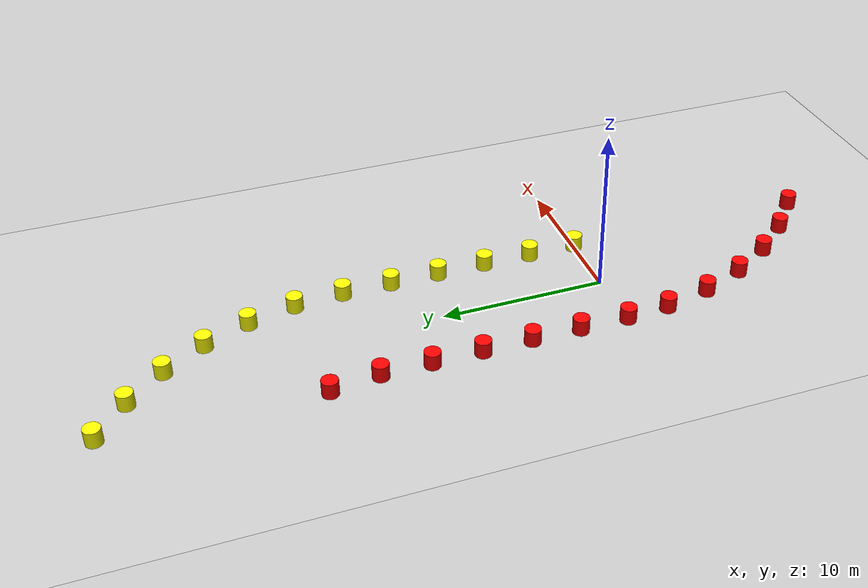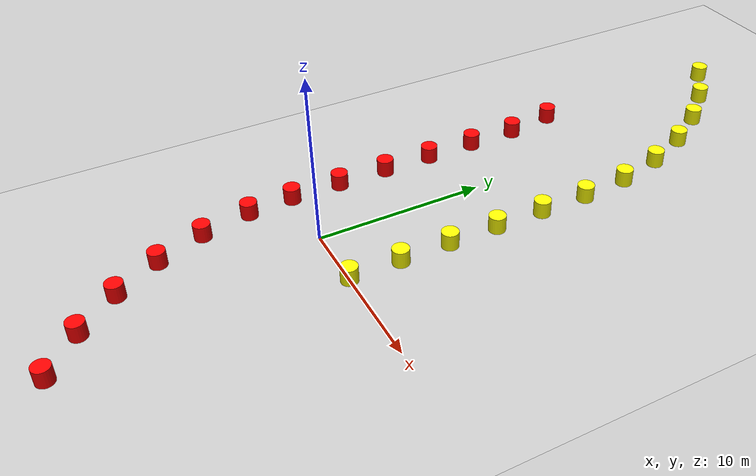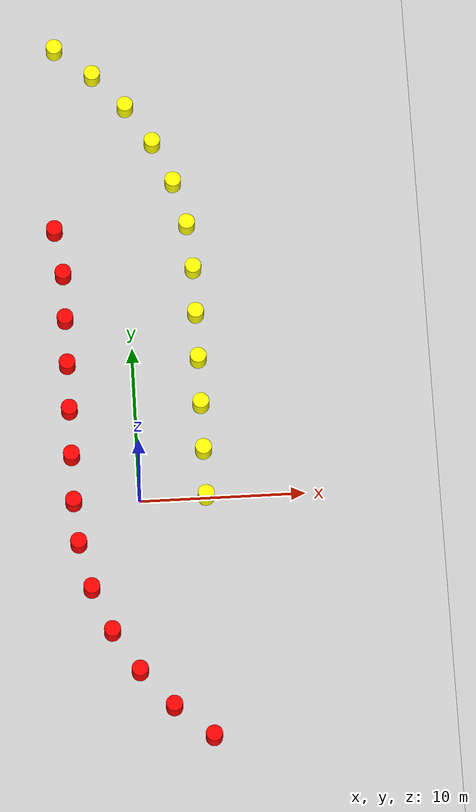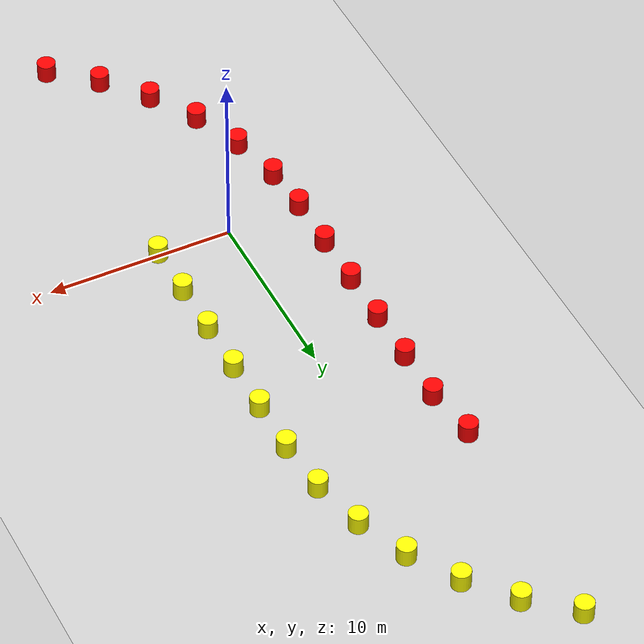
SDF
<sdf version="1.9">
 <world name="empty">
  <model name="ground_plane">
   <static>true</static>
   <link name="link">
    <collision name="collision">
     <geometry><plane><normal>0 0 1</normal><size>1000 1000</size></plane></geometry>
    </collision>
    <visual name="visual">
     <geometry><plane><normal>0 0 1</normal><size>1000 1000</size></plane></geometry>
     <material>
      <ambient>0.8 0.8 0.8 1</ambient>
      <diffuse>0.8 0.8 0.8 1</diffuse>
      <specular>0.8 0.8 0.8 1</specular>
     </material>
    </visual>
    <inertial>
     <mass>1</mass>
     <inertia><ixx>1</ixx><ixy>0</ixy><ixz>0</ixz><iyy>1</iyy><iyz>0</iyz><izz>1</izz></inertia>
    </inertial>
   </link>
  </model>
  <model name="red_cone_0">
   <pose>-4.0 0.0 0.5 0 -0 0</pose>
   <link name="cylinder_link">
    <inertial>
     <inertia>
      <ixx>0.14580000000000001</ixx>
      <ixy>0</ixy>
      <ixz>0</ixz>
      <iyy>0.14580000000000001</iyy>
      <iyz>0</iyz>
      <izz>0.125</izz>
     </inertia>
     <mass>1</mass>
    </inertial>
    <collision name="cylinder_collision">
     <geometry><cylinder><radius>0.5</radius><length>1</length></cylinder></geometry>
    </collision>
    <visual name="cylinder_visual">
     <geometry><cylinder><radius>0.5</radius><length>1</length></cylinder></geometry>
     <material><ambient>1 0 0 1</ambient><diffuse>1 0 0 1</diffuse><specular>1 1 1 1</specular></material>
    </visual>
   </link>
   <static>false</static>
  </model>
  <model name="red_cone_1">
   <pose>-4.0 3.0 0.5 0 -0 0</pose>
   <link name="cylinder_link">
    <inertial>
     <inertia>
      <ixx>0.14580000000000001</ixx>
      <ixy>0</ixy>
      <ixz>0</ixz>
      <iyy>0.14580000000000001</iyy>
      <iyz>0</iyz>
      <izz>0.125</izz>
     </inertia>
     <mass>1</mass>
    </inertial>
    <collision name="cylinder_collision">
     <geometry><cylinder><radius>0.5</radius><length>1</length></cylinder></geometry>
    </collision>
    <visual name="cylinder_visual">
     <geometry><cylinder><radius>0.5</radius><length>1</length></cylinder></geometry>
     <material><ambient>1 0 0 1</ambient><diffuse>1 0 0 1</diffuse><specular>1 1 1 1</specular></material>
    </visual>
   </link>
   <static>false</static>
  </model>
  <model name="red_cone_2">
   <pose>-4.0 6.0 0.5 0 -0 0</pose>
   <link name="cylinder_link">
    <inertial>
     <inertia>
      <ixx>0.14580000000000001</ixx>
      <ixy>0</ixy>
      <ixz>0</ixz>
      <iyy>0.14580000000000001</iyy>
      <iyz>0</iyz>
      <izz>0.125</izz>
     </inertia>
     <mass>1</mass>
    </inertial>
    <collision name="cylinder_collision">
     <geometry><cylinder><radius>0.5</radius><length>1</length></cylinder></geometry>
    </collision>
    <visual name="cylinder_visual">
     <geometry><cylinder><radius>0.5</radius><length>1</length></cylinder></geometry>
     <material><ambient>1 0 0 1</ambient><diffuse>1 0 0 1</diffuse><specular>1 1 1 1</specular></material>
    </visual>
   </link>
   <static>false</static>
  </model>
  <model name="red_cone_3">
   <pose>-4.0 9.0 0.5 0 -0 0</pose>
   <link name="cylinder_link">
    <inertial>
     <inertia>
      <ixx>0.14580000000000001</ixx>
      <ixy>0</ixy>
      <ixz>0</ixz>
      <iyy>0.14580000000000001</iyy>
      <iyz>0</iyz>
      <izz>0.125</izz>
     </inertia>
     <mass>1</mass>
    </inertial>
    <collision name="cylinder_collision">
     <geometry><cylinder><radius>0.5</radius><length>1</length></cylinder></geometry>
    </collision>
    <visual name="cylinder_visual">
     <geometry><cylinder><radius>0.5</radius><length>1</length></cylinder></geometry>
     <material><ambient>1 0 0 1</ambient><diffuse>1 0 0 1</diffuse><specular>1 1 1 1</specular></material>
    </visual>
   </link>
   <static>false</static>
  </model>
  <model name="red_cone_4">
   <pose>-4.0 12.0 0.5 0 -0 0</pose>
   <link name="cylinder_link">
    <inertial>
     <inertia>
      <ixx>0.14580000000000001</ixx>
      <ixy>0</ixy>
      <ixz>0</ixz>
      <iyy>0.14580000000000001</iyy>
      <iyz>0</iyz>
      <izz>0.125</izz>
     </inertia>
     <mass>1</mass>
    </inertial>
    <collision name="cylinder_collision">
     <geometry><cylinder><radius>0.5</radius><length>1</length></cylinder></geometry>
    </collision>
    <visual name="cylinder_visual">
     <geometry><cylinder><radius>0.5</radius><length>1</length></cylinder></geometry>
     <material><ambient>1 0 0 1</ambient><diffuse>1 0 0 1</diffuse><specular>1 1 1 1</specular></material>
    </visual>
   </link>
   <static>false</static>
  </model>
  <model name="red_cone_5">
   <pose>-4.0 15.0 0.5 0 -0 0</pose>
   <link name="cylinder_link">
    <inertial>
     <inertia>
      <ixx>0.14580000000000001</ixx>
      <ixy>0</ixy>
      <ixz>0</ixz>
      <iyy>0.14580000000000001</iyy>
      <iyz>0</iyz>
      <izz>0.125</izz>
     </inertia>
     <mass>1</mass>
    </inertial>
    <collision name="cylinder_collision">
     <geometry><cylinder><radius>0.5</radius><length>1</length></cylinder></geometry>
    </collision>
    <visual name="cylinder_visual">
     <geometry><cylinder><radius>0.5</radius><length>1</length></cylinder></geometry>
     <material><ambient>1 0 0 1</ambient><diffuse>1 0 0 1</diffuse><specular>1 1 1 1</specular></material>
    </visual>
   </link>
   <static>false</static>
  </model>
  <model name="red_cone_6">
   <pose>-4.0 15.0 0.5 0 -0 0</pose>
   <link name="cylinder_link">
    <inertial>
     <inertia>
      <ixx>0.14580000000000001</ixx>
      <ixy>0</ixy>
      <ixz>0</ixz>
      <iyy>0.14580000000000001</iyy>
      <iyz>0</iyz>
      <izz>0.125</izz>
     </inertia>
     <mass>1</mass>
    </inertial>
    <collision name="cylinder_collision">
     <geometry><cylinder><radius>0.5</radius><length>1</length></cylinder></geometry>
    </collision>
    <visual name="cylinder_visual">
     <geometry><cylinder><radius>0.5</radius><length>1</length></cylinder></geometry>
     <material><ambient>1 0 0 1</ambient><diffuse>1 0 0 1</diffuse><specular>1 1 1 1</specular></material>
    </visual>
   </link>
   <static>false</static>
  </model>
  <model name="red_cone_7">
   <pose>-4.406561500122885 17.962947982891585 0.5 0 -0 0</pose>
   <link name="cylinder_link">
    <inertial>
     <inertia>
      <ixx>0.14580000000000001</ixx>
      <ixy>0</ixy>
      <ixz>0</ixz>
      <iyy>0.14580000000000001</iyy>
      <iyz>0</iyz>
      <izz>0.125</izz>
     </inertia>
     <mass>1</mass>
    </inertial>
    <collision name="cylinder_collision">
     <geometry><cylinder><radius>0.5</radius><length>1</length></cylinder></geometry>
    </collision>
    <visual name="cylinder_visual">
     <geometry><cylinder><radius>0.5</radius><length>1</length></cylinder></geometry>
     <material><ambient>1 0 0 1</ambient><diffuse>1 0 0 1</diffuse><specular>1 1 1 1</specular></material>
    </visual>
   </link>
   <static>false</static>
  </model>
  <model name="red_cone_105">
   <pose>3.6574019466445726 -15.242882581717192 0.5 0 -0 0</pose>
   <link name="cylinder_link">
    <inertial>
     <inertia>
      <ixx>0.14580000000000001</ixx>
      <ixy>0</ixy>
      <ixz>0</ixz>
      <iyy>0.14580000000000001</iyy>
      <iyz>0</iyz>
      <izz>0.125</izz>
     </inertia>
     <mass>1</mass>
    </inertial>
    <collision name="cylinder_collision">
     <geometry><cylinder><radius>0.5</radius><length>1</length></cylinder></geometry>
    </collision>
    <visual name="cylinder_visual">
     <geometry><cylinder><radius>0.5</radius><length>1</length></cylinder></geometry>
     <material><ambient>1 0 0 1</ambient><diffuse>1 0 0 1</diffuse><specular>1 1 1 1</specular></material>
    </visual>
   </link>
   <static>false</static>
  </model>
  <model name="red_cone_106">
   <pose>1.4017152118752882 -13.269764535252905 0.5 0 -0 0</pose>
   <link name="cylinder_link">
    <inertial>
     <inertia>
      <ixx>0.14580000000000001</ixx>
      <ixy>0</ixy>
      <ixz>0</ixz>
      <iyy>0.14580000000000001</iyy>
      <iyz>0</iyz>
      <izz>0.125</izz>
     </inertia>
     <mass>1</mass>
    </inertial>
    <collision name="cylinder_collision">
     <geometry><cylinder><radius>0.5</radius><length>1</length></cylinder></geometry>
    </collision>
    <visual name="cylinder_visual">
     <geometry><cylinder><radius>0.5</radius><length>1</length></cylinder></geometry>
     <material><ambient>1 0 0 1</ambient><diffuse>1 0 0 1</diffuse><specular>1 1 1 1</specular></material>
    </visual>
   </link>
   <static>false</static>
  </model>
  <model name="red_cone_107">
   <pose>-0.5156598532566168 -10.966508073130685 0.5 0 -0 0</pose>
   <link name="cylinder_link">
    <inertial>
     <inertia>
      <ixx>0.14580000000000001</ixx>
      <ixy>0</ixy>
      <ixz>0</ixz>
      <iyy>0.14580000000000001</iyy>
      <iyz>0</iyz>
      <izz>0.125</izz>
     </inertia>
     <mass>1</mass>
    </inertial>
    <collision name="cylinder_collision">
     <geometry><cylinder><radius>0.5</radius><length>1</length></cylinder></geometry>
    </collision>
    <visual name="cylinder_visual">
     <geometry><cylinder><radius>0.5</radius><length>1</length></cylinder></geometry>
     <material><ambient>1 0 0 1</ambient><diffuse>1 0 0 1</diffuse><specular>1 1 1 1</specular></material>
    </visual>
   </link>
   <static>false</static>
  </model>
  <model name="red_cone_108">
   <pose>-2.0470208826282565 -8.390415903114445 0.5 0 -0 0</pose>
   <link name="cylinder_link">
    <inertial>
     <inertia>
      <ixx>0.14580000000000001</ixx>
      <ixy>0</ixy>
      <ixz>0</ixz>
      <iyy>0.14580000000000001</iyy>
      <iyz>0</iyz>
      <izz>0.125</izz>
     </inertia>
     <mass>1</mass>
    </inertial>
    <collision name="cylinder_collision">
     <geometry><cylinder><radius>0.5</radius><length>1</length></cylinder></geometry>
    </collision>
    <visual name="cylinder_visual">
     <geometry><cylinder><radius>0.5</radius><length>1</length></cylinder></geometry>
     <material><ambient>1 0 0 1</ambient><diffuse>1 0 0 1</diffuse><specular>1 1 1 1</specular></material>
    </visual>
   </link>
   <static>false</static>
  </model>
  <model name="red_cone_109">
   <pose>-3.154269151677216 -5.6055786113889035 0.5 0 -0 0</pose>
   <link name="cylinder_link">
    <inertial>
     <inertia>
      <ixx>0.14580000000000001</ixx>
      <ixy>0</ixy>
      <ixz>0</ixz>
      <iyy>0.14580000000000001</iyy>
      <iyz>0</iyz>
      <izz>0.125</izz>
     </inertia>
     <mass>1</mass>
    </inertial>
    <collision name="cylinder_collision">
     <geometry><cylinder><radius>0.5</radius><length>1</length></cylinder></geometry>
    </collision>
    <visual name="cylinder_visual">
     <geometry><cylinder><radius>0.5</radius><length>1</length></cylinder></geometry>
     <material><ambient>1 0 0 1</ambient><diffuse>1 0 0 1</diffuse><specular>1 1 1 1</specular></material>
    </visual>
   </link>
   <static>false</static>
  </model>
  <model name="red_cone_110">
   <pose>-3.809857435408457 -2.681280153137476 0.5 0 -0 0</pose>
   <link name="cylinder_link">
    <inertial>
     <inertia>
      <ixx>0.14580000000000001</ixx>
      <ixy>0</ixy>
      <ixz>0</ixz>
      <iyy>0.14580000000000001</iyy>
      <iyz>0</iyz>
      <izz>0.125</izz>
     </inertia>
     <mass>1</mass>
    </inertial>
    <collision name="cylinder_collision">
     <geometry><cylinder><radius>0.5</radius><length>1</length></cylinder></geometry>
    </collision>
    <visual name="cylinder_visual">
     <geometry><cylinder><radius>0.5</radius><length>1</length></cylinder></geometry>
     <material><ambient>1 0 0 1</ambient><diffuse>1 0 0 1</diffuse><specular>1 1 1 1</specular></material>
    </visual>
   </link>
   <static>false</static>
  </model>
  <model name="yellow_cone_0">
   <pose>4.0 0.0 0.5 0 -0 0</pose>
   <link name="cylinder_link">
    <inertial>
     <inertia>
      <ixx>0.14580000000000001</ixx>
      <ixy>0</ixy>
      <ixz>0</ixz>
      <iyy>0.14580000000000001</iyy>
      <iyz>0</iyz>
      <izz>0.125</izz>
     </inertia>
     <mass>1</mass>
    </inertial>
    <collision name="cylinder_collision">
     <geometry><cylinder><radius>0.5</radius><length>1</length></cylinder></geometry>
    </collision>
    <visual name="cylinder_visual">
     <geometry><cylinder><radius>0.5</radius><length>1</length></cylinder></geometry>
     <material><ambient>1 1 0 1</ambient><diffuse>1 1 0 1</diffuse><specular>1 1 1 1</specular></material>
    </visual>
   </link>
   <static>false</static>
  </model>
  <model name="yellow_cone_1">
   <pose>4.0 3.0 0.5 0 -0 0</pose>
   <link name="cylinder_link">
    <inertial>
     <inertia>
      <ixx>0.14580000000000001</ixx>
      <ixy>0</ixy>
      <ixz>0</ixz>
      <iyy>0.14580000000000001</iyy>
      <iyz>0</iyz>
      <izz>0.125</izz>
     </inertia>
     <mass>1</mass>
    </inertial>
    <collision name="cylinder_collision">
     <geometry><cylinder><radius>0.5</radius><length>1</length></cylinder></geometry>
    </collision>
    <visual name="cylinder_visual">
     <geometry><cylinder><radius>0.5</radius><length>1</length></cylinder></geometry>
     <material><ambient>1 1 0 1</ambient><diffuse>1 1 0 1</diffuse><specular>1 1 1 1</specular></material>
    </visual>
   </link>
   <static>false</static>
  </model>
  <model name="yellow_cone_2">
   <pose>4.0 6.0 0.5 0 -0 0</pose>
   <link name="cylinder_link">
    <inertial>
     <inertia>
      <ixx>0.14580000000000001</ixx>
      <ixy>0</ixy>
      <ixz>0</ixz>
      <iyy>0.14580000000000001</iyy>
      <iyz>0</iyz>
      <izz>0.125</izz>
     </inertia>
     <mass>1</mass>
    </inertial>
    <collision name="cylinder_collision">
     <geometry><cylinder><radius>0.5</radius><length>1</length></cylinder></geometry>
    </collision>
    <visual name="cylinder_visual">
     <geometry><cylinder><radius>0.5</radius><length>1</length></cylinder></geometry>
     <material><ambient>1 1 0 1</ambient><diffuse>1 1 0 1</diffuse><specular>1 1 1 1</specular></material>
    </visual>
   </link>
   <static>false</static>
  </model>
  <model name="yellow_cone_3">
   <pose>4.0 9.0 0.5 0 -0 0</pose>
   <link name="cylinder_link">
    <inertial>
     <inertia>
      <ixx>0.14580000000000001</ixx>
      <ixy>0</ixy>
      <ixz>0</ixz>
      <iyy>0.14580000000000001</iyy>
      <iyz>0</iyz>
      <izz>0.125</izz>
     </inertia>
     <mass>1</mass>
    </inertial>
    <collision name="cylinder_collision">
     <geometry><cylinder><radius>0.5</radius><length>1</length></cylinder></geometry>
    </collision>
    <visual name="cylinder_visual">
     <geometry><cylinder><radius>0.5</radius><length>1</length></cylinder></geometry>
     <material><ambient>1 1 0 1</ambient><diffuse>1 1 0 1</diffuse><specular>1 1 1 1</specular></material>
    </visual>
   </link>
   <static>false</static>
  </model>
  <model name="yellow_cone_4">
   <pose>4.0 12.0 0.5 0 -0 0</pose>
   <link name="cylinder_link">
    <inertial>
     <inertia>
      <ixx>0.14580000000000001</ixx>
      <ixy>0</ixy>
      <ixz>0</ixz>
      <iyy>0.14580000000000001</iyy>
      <iyz>0</iyz>
      <izz>0.125</izz>
     </inertia>
     <mass>1</mass>
    </inertial>
    <collision name="cylinder_collision">
     <geometry><cylinder><radius>0.5</radius><length>1</length></cylinder></geometry>
    </collision>
    <visual name="cylinder_visual">
     <geometry><cylinder><radius>0.5</radius><length>1</length></cylinder></geometry>
     <material><ambient>1 1 0 1</ambient><diffuse>1 1 0 1</diffuse><specular>1 1 1 1</specular></material>
    </visual>
   </link>
   <static>false</static>
  </model>
  <model name="yellow_cone_5">
   <pose>4.0 15.0 0.5 0 -0 0</pose>
   <link name="cylinder_link">
    <inertial>
     <inertia>
      <ixx>0.14580000000000001</ixx>
      <ixy>0</ixy>
      <ixz>0</ixz>
      <iyy>0.14580000000000001</iyy>
      <iyz>0</iyz>
      <izz>0.125</izz>
     </inertia>
     <mass>1</mass>
    </inertial>
    <collision name="cylinder_collision">
     <geometry><cylinder><radius>0.5</radius><length>1</length></cylinder></geometry>
    </collision>
    <visual name="cylinder_visual">
     <geometry><cylinder><radius>0.5</radius><length>1</length></cylinder></geometry>
     <material><ambient>1 1 0 1</ambient><diffuse>1 1 0 1</diffuse><specular>1 1 1 1</specular></material>
    </visual>
   </link>
   <static>false</static>
  </model>
  <model name="yellow_cone_7">
   <pose>3.76364954024481 17.987550155373256 0.5 0 -0 0</pose>
   <link name="cylinder_link">
    <inertial>
     <inertia>
      <ixx>0.14580000000000001</ixx>
      <ixy>0</ixy>
      <ixz>0</ixz>
      <iyy>0.14580000000000001</iyy>
      <iyz>0</iyz>
      <izz>0.125</izz>
     </inertia>
     <mass>1</mass>
    </inertial>
    <collision name="cylinder_collision">
     <geometry><cylinder><radius>0.5</radius><length>1</length></cylinder></geometry>
    </collision>
    <visual name="cylinder_visual">
     <geometry><cylinder><radius>0.5</radius><length>1</length></cylinder></geometry>
     <material><ambient>1 1 0 1</ambient><diffuse>1 1 0 1</diffuse><specular>1 1 1 1</specular></material>
    </visual>
   </link>
   <static>false</static>
  </model>
  <model name="yellow_cone_8">
   <pose>3.060478323066235 20.900773063087126 0.5 0 -0 0</pose>
   <link name="cylinder_link">
    <inertial>
     <inertia>
      <ixx>0.14580000000000001</ixx>
      <ixy>0</ixy>
      <ixz>0</ixz>
      <iyy>0.14580000000000001</iyy>
      <iyz>0</iyz>
      <izz>0.125</izz>
     </inertia>
     <mass>1</mass>
    </inertial>
    <collision name="cylinder_collision">
     <geometry><cylinder><radius>0.5</radius><length>1</length></cylinder></geometry>
    </collision>
    <visual name="cylinder_visual">
     <geometry><cylinder><radius>0.5</radius><length>1</length></cylinder></geometry>
     <material><ambient>1 1 0 1</ambient><diffuse>1 1 0 1</diffuse><specular>1 1 1 1</specular></material>
    </visual>
   </link>
   <static>false</static>
  </model>
  <model name="yellow_cone_9">
   <pose>1.907980542197624 23.66719066276187 0.5 0 -0 0</pose>
   <link name="cylinder_link">
    <inertial>
     <inertia>
      <ixx>0.14580000000000001</ixx>
      <ixy>0</ixy>
      <ixz>0</ixz>
      <iyy>0.14580000000000001</iyy>
      <iyz>0</iyz>
      <izz>0.125</izz>
     </inertia>
     <mass>1</mass>
    </inertial>
    <collision name="cylinder_collision">
     <geometry><cylinder><radius>0.5</radius><length>1</length></cylinder></geometry>
    </collision>
    <visual name="cylinder_visual">
     <geometry><cylinder><radius>0.5</radius><length>1</length></cylinder></geometry>
     <material><ambient>1 1 0 1</ambient><diffuse>1 1 0 1</diffuse><specular>1 1 1 1</specular></material>
    </visual>
   </link>
   <static>false</static>
  </model>
  <model name="yellow_cone_10">
   <pose>0.33482918504688364 26.217977262654543 0.5 0 -0 0</pose>
   <link name="cylinder_link">
    <inertial>
     <inertia>
      <ixx>0.14580000000000001</ixx>
      <ixy>0</ixy>
      <ixz>0</ixz>
      <iyy>0.14580000000000001</iyy>
      <iyz>0</iyz>
      <izz>0.125</izz>
     </inertia>
     <mass>1</mass>
    </inertial>
    <collision name="cylinder_collision">
     <geometry><cylinder><radius>0.5</radius><length>1</length></cylinder></geometry>
    </collision>
    <visual name="cylinder_visual">
     <geometry><cylinder><radius>0.5</radius><length>1</length></cylinder></geometry>
     <material><ambient>1 1 0 1</ambient><diffuse>1 1 0 1</diffuse><specular>1 1 1 1</specular></material>
    </visual>
   </link>
   <static>false</static>
  </model>
  <model name="yellow_cone_11">
   <pose>-1.6198373224357656 28.489671853752306 0.5 0 -0 0</pose>
   <link name="cylinder_link">
    <inertial>
     <inertia>
      <ixx>0.14580000000000001</ixx>
      <ixy>0</ixy>
      <ixz>0</ixz>
      <iyy>0.14580000000000001</iyy>
      <iyz>0</iyz>
      <izz>0.125</izz>
     </inertia>
     <mass>1</mass>
    </inertial>
    <collision name="cylinder_collision">
     <geometry><cylinder><radius>0.5</radius><length>1</length></cylinder></geometry>
    </collision>
    <visual name="cylinder_visual">
     <geometry><cylinder><radius>0.5</radius><length>1</length></cylinder></geometry>
     <material><ambient>1 1 0 1</ambient><diffuse>1 1 0 1</diffuse><specular>1 1 1 1</specular></material>
    </visual>
   </link>
   <static>false</static>
  </model>
  <model name="yellow_cone_12">
   <pose>-3.90738884049121 30.425756955946802 0.5 0 -0 0</pose>
   <link name="cylinder_link">
    <inertial>
     <inertia>
      <ixx>0.14580000000000001</ixx>
      <ixy>0</ixy>
      <ixz>0</ixz>
      <iyy>0.14580000000000001</iyy>
      <iyz>0</iyz>
      <izz>0.125</izz>
     </inertia>
     <mass>1</mass>
    </inertial>
    <collision name="cylinder_collision">
     <geometry><cylinder><radius>0.5</radius><length>1</length></cylinder></geometry>
    </collision>
    <visual name="cylinder_visual">
     <geometry><cylinder><radius>0.5</radius><length>1</length></cylinder></geometry>
     <material><ambient>1 1 0 1</ambient><diffuse>1 1 0 1</diffuse><specular>1 1 1 1</specular></material>
    </visual>
   </link>
   <static>false</static>
  </model>
 </world>
</sdf>
